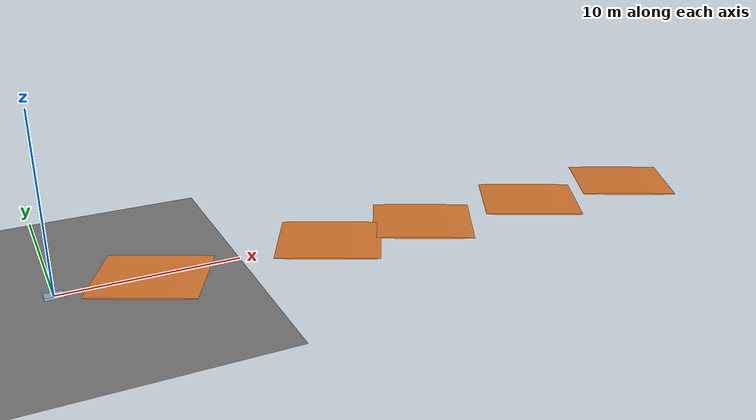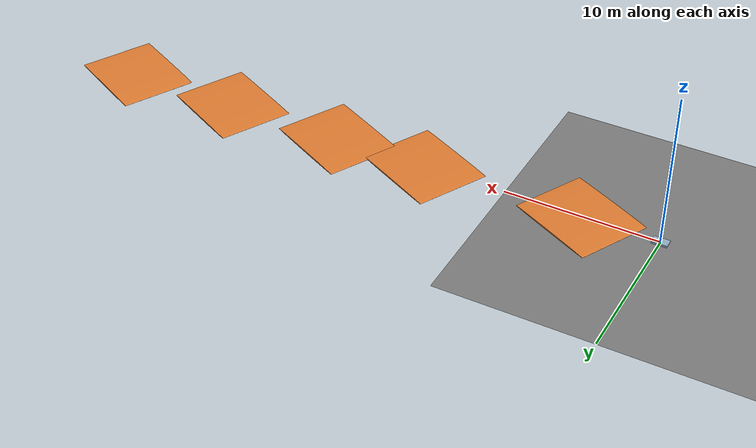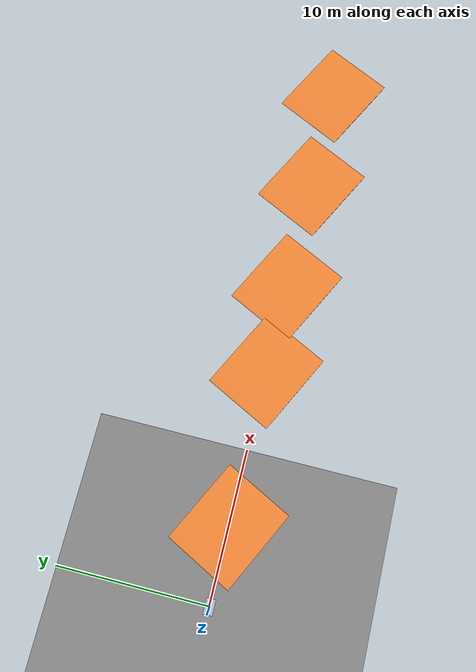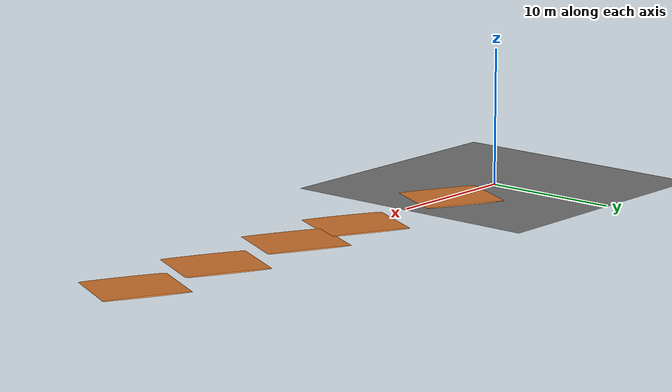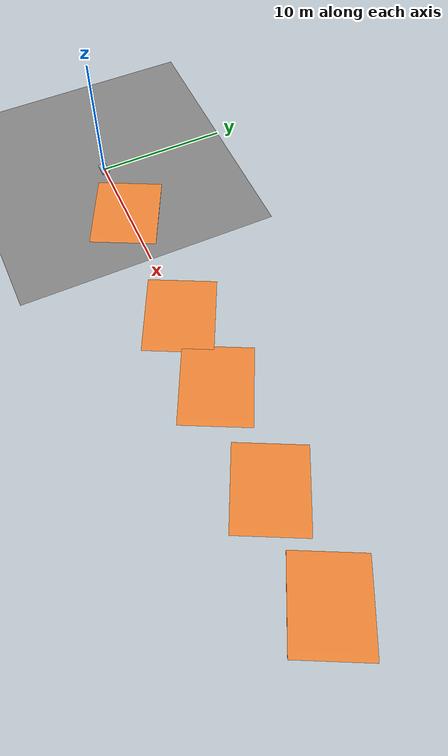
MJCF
<mujoco model="base_scene">
    <compiler angle="degree" coordinate="local" />
    <option gravity="0 0 -9.81" integrator="RK4" timestep="0.001" />

    <include file="simplecar_mjcf.xml" />

    <asset>

    <mesh name="speedbump-3_013-0_045-5_000" file="speedbumps/speedbump-3_013-0_045-5_000.stl" /></asset>

    <worldbody>
        <geom name="ground" type="plane" size="10 10 0.1" rgba="0.5 0.5 0.5 1" />

        <body name="vehicle" pos="0 0 0">
        </body>
    <geom type="mesh" mesh="speedbump-3_013-0_045-5_000" pos="5.000 0.000 0.000" euler="0 0 -90" rgba="0.9 0.5 0.2 1" contype="1" conaffinity="1" /><geom type="mesh" mesh="speedbump-3_013-0_045-5_000" pos="15.476 0.000 0.000" euler="0 0 -90" rgba="0.9 0.5 0.2 1" contype="1" conaffinity="1" /><geom type="mesh" mesh="speedbump-3_013-0_045-5_000" pos="21.651 0.000 0.000" euler="0 0 -90" rgba="0.9 0.5 0.2 1" contype="1" conaffinity="1" /><geom type="mesh" mesh="speedbump-3_013-0_045-5_000" pos="29.576 0.000 0.000" euler="0 0 -90" rgba="0.9 0.5 0.2 1" contype="1" conaffinity="1" /><geom type="mesh" mesh="speedbump-3_013-0_045-5_000" pos="37.139 0.000 0.000" euler="0 0 -90" rgba="0.9 0.5 0.2 1" contype="1" conaffinity="1" /></worldbody>
</mujoco>

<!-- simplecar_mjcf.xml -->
<mujoco model="simplecar">
  <compiler angle="radian"/>

  <asset>
    <material name="black" rgba="0 0 0 1"/>
    <material name="blue" rgba="0.6 0.7 0.8 1"/>
  </asset>

  <worldbody>
    <body name="base_link" pos="0 0 0"> <inertial pos="0 0 0" mass="6" diaginertia="0.2 0.2 0.2"/>
      <geom size="0.5 0.3 0.1" type="box" rgba="0.6 0.7 0.8 1"/> <site name="car_body_site" pos="0 0 0.05"/> <body name="left_hinge" pos="0.2 0 0">
        <inertial pos="0 0 0" mass="0.01" diaginertia="5e-06 5e-06 5e-06"/>
        <joint name="base_to_left_hinge" pos="0 0 0" axis="0 0 1" range="-0.5 0.5" type="hinge"/> <geom size="0.10 0.01 0.01" type="box" rgba="0 0 0 1"/> <body name="left_front_wheel" pos="0 0.2 0">
          <inertial pos="0 0 0" mass="0.3" diaginertia="0.4 0.4 0.2"/>
          <joint name="left_hinge_to_left_front_wheel" pos="0 0 0" axis="0 1 0" type="hinge"/> <geom size="0.1 0.025" quat="0.500023 0.5 0.5 -0.499977" type="cylinder" rgba="0 0 0 1"/>
        </body>
      </body>

      <body name="right_hinge" pos="0.2 0 0">
        <inertial pos="0 0 0" mass="0.01" diaginertia="5e-06 5e-06 5e-06"/>
        <joint name="base_to_right_hinge" pos="0 0 0" axis="0 0 1" range="-0.5 0.5" type="hinge"/>
        <geom size="0.10 0.01 0.01" type="box" rgba="0 0 0 1"/>
        <body name="right_front_wheel" pos="0 -0.2 0">
          <inertial pos="0 0 0" mass="0.3" diaginertia="0.4 0.4 0.2"/>
          <joint name="right_hinge_to_right_front_wheel" pos="0 0 0" axis="0 1 0" type="hinge"/>
          <geom size="0.1 0.025" quat="0.500023 -0.5 -0.5 -0.499977" type="cylinder" rgba="0 0 0 1"/>
        </body>
      </body>

      <body name="left_back_wheel" pos="-0.2 0.175 0">
        <inertial pos="0 0 0" mass="0.3" diaginertia="0.4 0.4 0.2"/>
        <joint name="base_to_left_back_wheel" pos="0 0 0" axis="0 1 0" type="hinge"/>
        <geom size="0.1 0.025" quat="0.500023 0.5 0.5 -0.499977" type="cylinder" rgba="0 0 0 1"/>
      </body>

      <body name="right_back_wheel" pos="-0.2 -0.175 0">
        <inertial pos="0 0 0" mass="0.3" diaginertia="0.4 0.4 0.2"/>
        <joint name="base_to_right_back_wheel" pos="0 0 0" axis="0 1 0" type="hinge"/>
        <geom size="0.1 0.025" quat="0.500023 -0.5 -0.5 -0.499977" type="cylinder" rgba="0 0 0 1"/>
      </body>
    </body> </worldbody>

  <actuator>
    <motor name="fl_motor" joint="left_hinge_to_left_front_wheel" gear="10"/> <motor name="fr_motor" joint="right_hinge_to_right_front_wheel" gear="10"/>
    <motor name="rl_motor" joint="base_to_left_back_wheel" gear="10"/>
    <motor name="rr_motor" joint="base_to_right_back_wheel" gear="10"/>

    <motor name="left_hinge_motor" joint="base_to_left_hinge" gear="10"/>
    <motor name="right_hinge_motor" joint="base_to_right_hinge" gear="10"/>

  </actuator>

  <sensor>
    <accelerometer name="accel_z" site="car_body_site"/>
    <gyro name="gyro_pitch" site="car_body_site"/>
  </sensor>

</mujoco>
